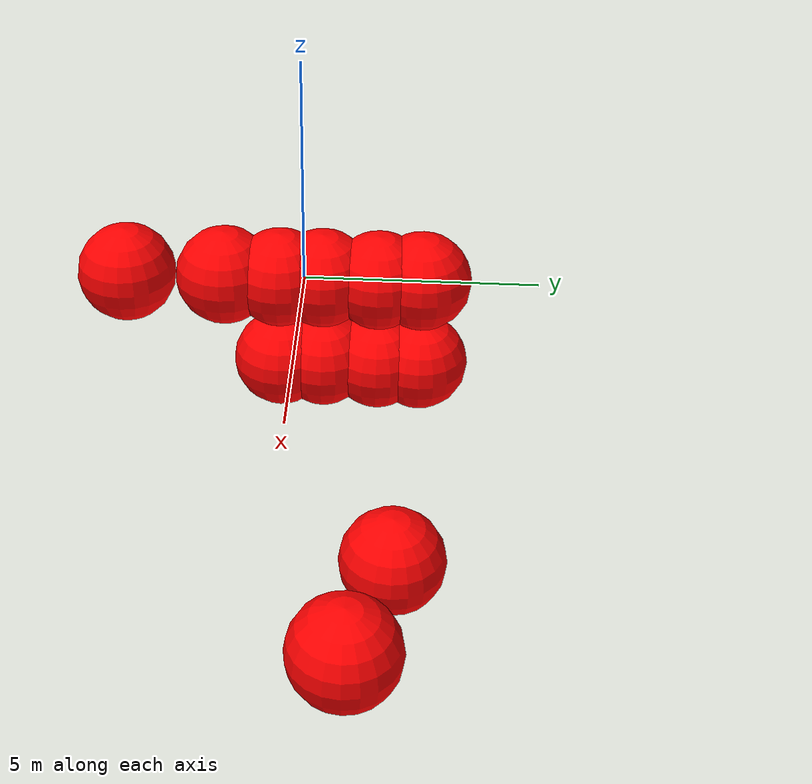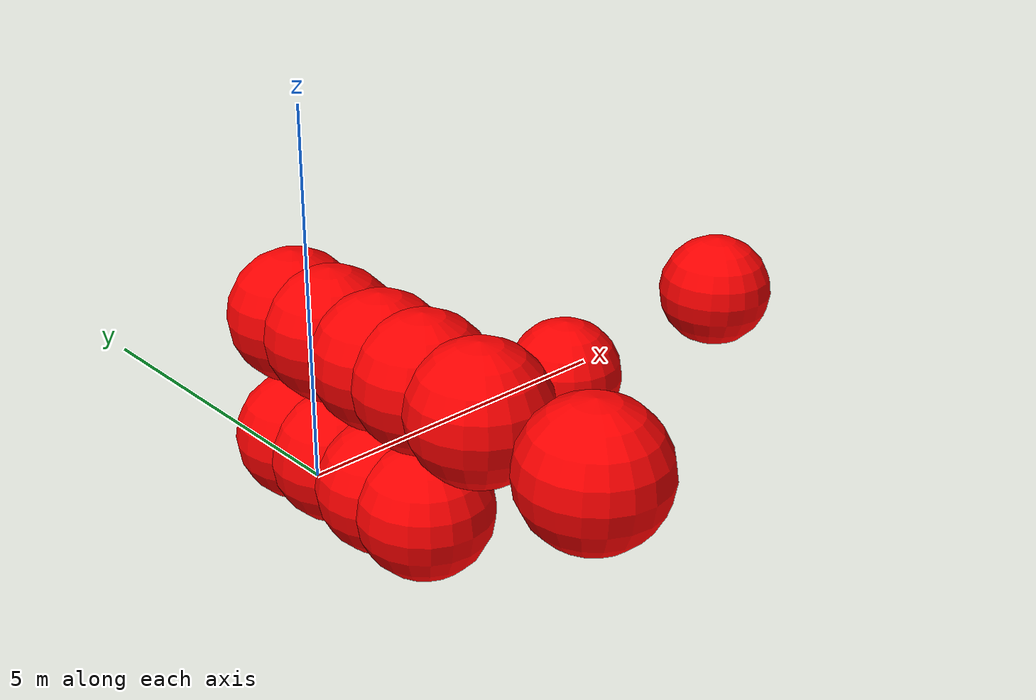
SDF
<sdf version="1.8">
 <world name="3d_world">
  <model name="obstacle_1" canonical_link="obstacle">
   <static>true</static>
   <pose relative_to="world">1.53 -0.36 -1.00 0 0 0</pose>
   <link name="obstacle">
    <pose relative_to="__model__">0.0 0 0.0 0 0 0</pose>
    <visual name="visual">
     <geometry><sphere><radius>1.00</radius></sphere></geometry>
     <material>
      <ambient>1.0 0.0 0.0 1</ambient>
      <diffuse>1.0 0.0 0.0 1</diffuse>
      <specular>1.0 0.0 0.0 1</specular>
     </material>
    </visual>
    <collision name="collision"><geometry><sphere><radius>1.00</radius></sphere></geometry></collision>
    <enable_gravity>false</enable_gravity>
   </link>
   <plugin filename="ignition-gazebo-velocity-control-system" name="ignition::gazebo::systems::VelocityControl">
    <initial_linear>0.00 0.00 0.00</initial_linear>
    <initial_angular>0 0 0</initial_angular>
   </plugin>
   <plugin filename="ignition-gazebo-odometry-publisher-system" name="ignition::gazebo::systems::OdometryPublisher">
    <dimensions>3</dimensions>
   </plugin>
  </model>
  <model name="obstacle_2" canonical_link="obstacle">
   <static>true</static>
   <pose relative_to="world">1.53 1.64 -1.00 0 0 0</pose>
   <link name="obstacle">
    <pose relative_to="__model__">0.0 0 0.0 0 0 0</pose>
    <visual name="visual">
     <geometry><sphere><radius>1.00</radius></sphere></geometry>
     <material>
      <ambient>1.0 0.0 0.0 1</ambient>
      <diffuse>1.0 0.0 0.0 1</diffuse>
      <specular>1.0 0.0 0.0 1</specular>
     </material>
    </visual>
    <collision name="collision"><geometry><sphere><radius>1.00</radius></sphere></geometry></collision>
    <enable_gravity>false</enable_gravity>
   </link>
   <plugin filename="ignition-gazebo-velocity-control-system" name="ignition::gazebo::systems::VelocityControl">
    <initial_linear>0.00 0.00 0.00</initial_linear>
    <initial_angular>0 0 0</initial_angular>
   </plugin>
   <plugin filename="ignition-gazebo-odometry-publisher-system" name="ignition::gazebo::systems::OdometryPublisher">
    <dimensions>3</dimensions>
   </plugin>
  </model>
  <model name="obstacle_3" canonical_link="obstacle">
   <static>true</static>
   <pose relative_to="world">1.53 -0.36 1.00 0 0 0</pose>
   <link name="obstacle">
    <pose relative_to="__model__">0.0 0 0.0 0 0 0</pose>
    <visual name="visual">
     <geometry><sphere><radius>1.00</radius></sphere></geometry>
     <material>
      <ambient>1.0 0.0 0.0 1</ambient>
      <diffuse>1.0 0.0 0.0 1</diffuse>
      <specular>1.0 0.0 0.0 1</specular>
     </material>
    </visual>
    <collision name="collision"><geometry><sphere><radius>1.00</radius></sphere></geometry></collision>
    <enable_gravity>false</enable_gravity>
   </link>
   <plugin filename="ignition-gazebo-velocity-control-system" name="ignition::gazebo::systems::VelocityControl">
    <initial_linear>0.00 0.00 0.00</initial_linear>
    <initial_angular>0 0 0</initial_angular>
   </plugin>
   <plugin filename="ignition-gazebo-odometry-publisher-system" name="ignition::gazebo::systems::OdometryPublisher">
    <dimensions>3</dimensions>
   </plugin>
  </model>
  <model name="obstacle_4" canonical_link="obstacle">
   <static>true</static>
   <pose relative_to="world">1.53 1.64 1.00 0 0 0</pose>
   <link name="obstacle">
    <pose relative_to="__model__">0.0 0 0.0 0 0 0</pose>
    <visual name="visual">
     <geometry><sphere><radius>1.00</radius></sphere></geometry>
     <material>
      <ambient>1.0 0.0 0.0 1</ambient>
      <diffuse>1.0 0.0 0.0 1</diffuse>
      <specular>1.0 0.0 0.0 1</specular>
     </material>
    </visual>
    <collision name="collision"><geometry><sphere><radius>1.00</radius></sphere></geometry></collision>
    <enable_gravity>false</enable_gravity>
   </link>
   <plugin filename="ignition-gazebo-velocity-control-system" name="ignition::gazebo::systems::VelocityControl">
    <initial_linear>0.00 0.00 0.00</initial_linear>
    <initial_angular>0 0 0</initial_angular>
   </plugin>
   <plugin filename="ignition-gazebo-odometry-publisher-system" name="ignition::gazebo::systems::OdometryPublisher">
    <dimensions>3</dimensions>
   </plugin>
  </model>
  <model name="obstacle_7" canonical_link="obstacle">
   <static>true</static>
   <pose relative_to="world">1.51 0.51 -1.00 0 0 0</pose>
   <link name="obstacle">
    <pose relative_to="__model__">0.0 0 0.0 0 0 0</pose>
    <visual name="visual">
     <geometry><sphere><radius>1.00</radius></sphere></geometry>
     <material>
      <ambient>1.0 0.0 0.0 1</ambient>
      <diffuse>1.0 0.0 0.0 1</diffuse>
      <specular>1.0 0.0 0.0 1</specular>
     </material>
    </visual>
    <collision name="collision"><geometry><sphere><radius>1.00</radius></sphere></geometry></collision>
    <enable_gravity>false</enable_gravity>
   </link>
   <plugin filename="ignition-gazebo-velocity-control-system" name="ignition::gazebo::systems::VelocityControl">
    <initial_linear>0.00 0.00 0.00</initial_linear>
    <initial_angular>0 0 0</initial_angular>
   </plugin>
   <plugin filename="ignition-gazebo-odometry-publisher-system" name="ignition::gazebo::systems::OdometryPublisher">
    <dimensions>3</dimensions>
   </plugin>
  </model>
  <model name="obstacle_8" canonical_link="obstacle">
   <static>true</static>
   <pose relative_to="world">1.51 2.51 -1.00 0 0 0</pose>
   <link name="obstacle">
    <pose relative_to="__model__">0.0 0 0.0 0 0 0</pose>
    <visual name="visual">
     <geometry><sphere><radius>1.00</radius></sphere></geometry>
     <material>
      <ambient>1.0 0.0 0.0 1</ambient>
      <diffuse>1.0 0.0 0.0 1</diffuse>
      <specular>1.0 0.0 0.0 1</specular>
     </material>
    </visual>
    <collision name="collision"><geometry><sphere><radius>1.00</radius></sphere></geometry></collision>
    <enable_gravity>false</enable_gravity>
   </link>
   <plugin filename="ignition-gazebo-velocity-control-system" name="ignition::gazebo::systems::VelocityControl">
    <initial_linear>0.00 0.00 0.00</initial_linear>
    <initial_angular>0 0 0</initial_angular>
   </plugin>
   <plugin filename="ignition-gazebo-odometry-publisher-system" name="ignition::gazebo::systems::OdometryPublisher">
    <dimensions>3</dimensions>
   </plugin>
  </model>
  <model name="obstacle_9" canonical_link="obstacle">
   <static>true</static>
   <pose relative_to="world">1.51 -3.49 1.00 0 0 0</pose>
   <link name="obstacle">
    <pose relative_to="__model__">0.0 0 0.0 0 0 0</pose>
    <visual name="visual">
     <geometry><sphere><radius>1.00</radius></sphere></geometry>
     <material>
      <ambient>1.0 0.0 0.0 1</ambient>
      <diffuse>1.0 0.0 0.0 1</diffuse>
      <specular>1.0 0.0 0.0 1</specular>
     </material>
    </visual>
    <collision name="collision"><geometry><sphere><radius>1.00</radius></sphere></geometry></collision>
    <enable_gravity>false</enable_gravity>
   </link>
   <plugin filename="ignition-gazebo-velocity-control-system" name="ignition::gazebo::systems::VelocityControl">
    <initial_linear>0.00 0.00 0.00</initial_linear>
    <initial_angular>0 0 0</initial_angular>
   </plugin>
   <plugin filename="ignition-gazebo-odometry-publisher-system" name="ignition::gazebo::systems::OdometryPublisher">
    <dimensions>3</dimensions>
   </plugin>
  </model>
  <model name="obstacle_10" canonical_link="obstacle">
   <static>true</static>
   <pose relative_to="world">1.51 -1.49 1.00 0 0 0</pose>
   <link name="obstacle">
    <pose relative_to="__model__">0.0 0 0.0 0 0 0</pose>
    <visual name="visual">
     <geometry><sphere><radius>1.00</radius></sphere></geometry>
     <material>
      <ambient>1.0 0.0 0.0 1</ambient>
      <diffuse>1.0 0.0 0.0 1</diffuse>
      <specular>1.0 0.0 0.0 1</specular>
     </material>
    </visual>
    <collision name="collision"><geometry><sphere><radius>1.00</radius></sphere></geometry></collision>
    <enable_gravity>false</enable_gravity>
   </link>
   <plugin filename="ignition-gazebo-velocity-control-system" name="ignition::gazebo::systems::VelocityControl">
    <initial_linear>0.00 0.00 0.00</initial_linear>
    <initial_angular>0 0 0</initial_angular>
   </plugin>
   <plugin filename="ignition-gazebo-odometry-publisher-system" name="ignition::gazebo::systems::OdometryPublisher">
    <dimensions>3</dimensions>
   </plugin>
  </model>
  <model name="obstacle_11" canonical_link="obstacle">
   <static>true</static>
   <pose relative_to="world">1.51 0.51 1.00 0 0 0</pose>
   <link name="obstacle">
    <pose relative_to="__model__">0.0 0 0.0 0 0 0</pose>
    <visual name="visual">
     <geometry><sphere><radius>1.00</radius></sphere></geometry>
     <material>
      <ambient>1.0 0.0 0.0 1</ambient>
      <diffuse>1.0 0.0 0.0 1</diffuse>
      <specular>1.0 0.0 0.0 1</specular>
     </material>
    </visual>
    <collision name="collision"><geometry><sphere><radius>1.00</radius></sphere></geometry></collision>
    <enable_gravity>false</enable_gravity>
   </link>
   <plugin filename="ignition-gazebo-velocity-control-system" name="ignition::gazebo::systems::VelocityControl">
    <initial_linear>0.00 0.00 0.00</initial_linear>
    <initial_angular>0 0 0</initial_angular>
   </plugin>
   <plugin filename="ignition-gazebo-odometry-publisher-system" name="ignition::gazebo::systems::OdometryPublisher">
    <dimensions>3</dimensions>
   </plugin>
  </model>
  <model name="obstacle_12" canonical_link="obstacle">
   <static>true</static>
   <pose relative_to="world">1.51 2.51 1.00 0 0 0</pose>
   <link name="obstacle">
    <pose relative_to="__model__">0.0 0 0.0 0 0 0</pose>
    <visual name="visual">
     <geometry><sphere><radius>1.00</radius></sphere></geometry>
     <material>
      <ambient>1.0 0.0 0.0 1</ambient>
      <diffuse>1.0 0.0 0.0 1</diffuse>
      <specular>1.0 0.0 0.0 1</specular>
     </material>
    </visual>
    <collision name="collision"><geometry><sphere><radius>1.00</radius></sphere></geometry></collision>
    <enable_gravity>false</enable_gravity>
   </link>
   <plugin filename="ignition-gazebo-velocity-control-system" name="ignition::gazebo::systems::VelocityControl">
    <initial_linear>0.00 0.00 0.00</initial_linear>
    <initial_angular>0 0 0</initial_angular>
   </plugin>
   <plugin filename="ignition-gazebo-odometry-publisher-system" name="ignition::gazebo::systems::OdometryPublisher">
    <dimensions>3</dimensions>
   </plugin>
  </model>
  <model name="obstacle_19" canonical_link="obstacle">
   <static>false</static>
   <pose relative_to="world">6.81 2.12 -1.64 0 0 0</pose>
   <link name="obstacle">
    <pose relative_to="__model__">0.0 0 0.0 0 0 0</pose>
    <visual name="visual">
     <geometry><sphere><radius>1.00</radius></sphere></geometry>
     <material>
      <ambient>1.0 0.0 0.0 1</ambient>
      <diffuse>1.0 0.0 0.0 1</diffuse>
      <specular>1.0 0.0 0.0 1</specular>
     </material>
    </visual>
    <collision name="collision"><geometry><sphere><radius>1.00</radius></sphere></geometry></collision>
    <enable_gravity>false</enable_gravity>
   </link>
   <plugin filename="ignition-gazebo-velocity-control-system" name="ignition::gazebo::systems::VelocityControl">
    <initial_linear>0.00 -1.28 0.91</initial_linear>
    <initial_angular>0 0 0</initial_angular>
   </plugin>
   <plugin filename="ignition-gazebo-odometry-publisher-system" name="ignition::gazebo::systems::OdometryPublisher">
    <dimensions>3</dimensions>
   </plugin>
  </model>
  <model name="obstacle_22" canonical_link="obstacle">
   <static>false</static>
   <pose relative_to="world">9.90 1.41 -0.71 0 0 0</pose>
   <link name="obstacle">
    <pose relative_to="__model__">0.0 0 0.0 0 0 0</pose>
    <visual name="visual">
     <geometry><sphere><radius>1.00</radius></sphere></geometry>
     <material>
      <ambient>1.0 0.0 0.0 1</ambient>
      <diffuse>1.0 0.0 0.0 1</diffuse>
      <specular>1.0 0.0 0.0 1</specular>
     </material>
    </visual>
    <collision name="collision"><geometry><sphere><radius>1.00</radius></sphere></geometry></collision>
    <enable_gravity>false</enable_gravity>
   </link>
   <plugin filename="ignition-gazebo-velocity-control-system" name="ignition::gazebo::systems::VelocityControl">
    <initial_linear>0.00 -0.78 0.31</initial_linear>
    <initial_angular>0 0 0</initial_angular>
   </plugin>
   <plugin filename="ignition-gazebo-odometry-publisher-system" name="ignition::gazebo::systems::OdometryPublisher">
    <dimensions>3</dimensions>
   </plugin>
  </model>
 </world>
</sdf>
